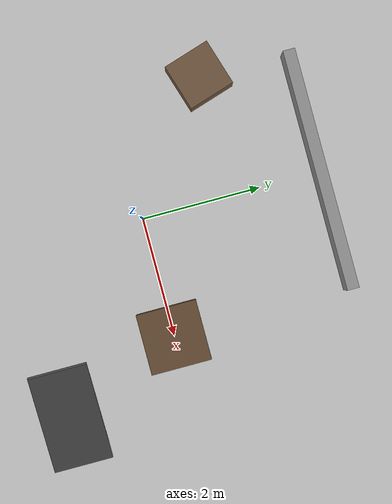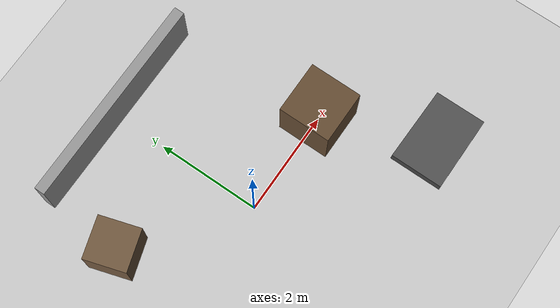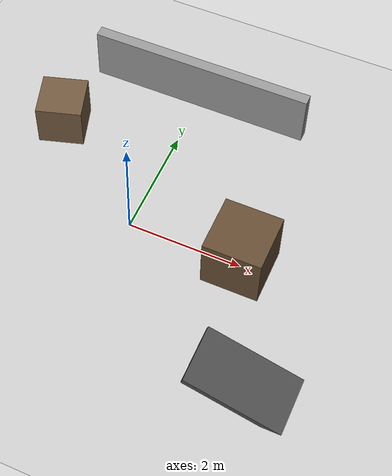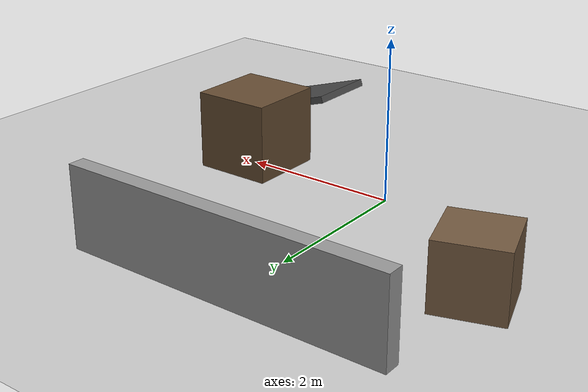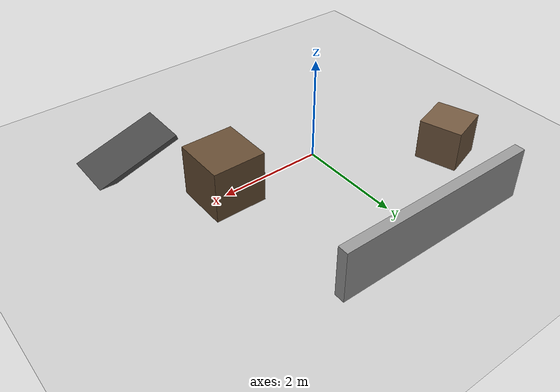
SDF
<?xml version="1.0"?>
<sdf version="1.6">
  <world name="default">
    <include>
      <uri>model://ground_plane</uri>
    </include>
    <include>
      <uri>model://sun</uri>
    </include>

    <model name="rubble_block_1">
      <static>true</static>
      <pose>2 0 0.5 0 0 0</pose>
      <link name="link">
        <collision name="collision">
          <geometry>
            <box>
              <size>1 1 1</size>
            </box>
          </geometry>
        </collision>
        <visual name="visual">
          <geometry>
            <box>
              <size>1 1 1</size>
            </box>
          </geometry>
          <material>
            <ambient>0.4 0.3 0.2 1</ambient>
            <diffuse>0.4 0.3 0.2 1</diffuse>
          </material>
        </visual>
      </link>
    </model>

    <model name="rubble_block_2">
      <static>true</static>
      <pose>-2 1.5 0.4 0 0 0.3</pose>
      <link name="link">
        <collision name="collision">
          <geometry>
            <box>
              <size>0.8 0.8 0.8</size>
            </box>
          </geometry>
        </collision>
        <visual name="visual">
          <geometry>
            <box>
              <size>0.8 0.8 0.8</size>
            </box>
          </geometry>
          <material>
            <ambient>0.45 0.35 0.25 1</ambient>
            <diffuse>0.45 0.35 0.25 1</diffuse>
          </material>
        </visual>
      </link>
    </model>

    <model name="wall_segment_1">
      <static>true</static>
      <pose>0 3 0.5 0 0 0</pose>
      <link name="link">
        <collision name="collision">
          <geometry>
            <box>
              <size>4 0.2 1</size>
            </box>
          </geometry>
        </collision>
        <visual name="visual">
          <geometry>
            <box>
              <size>4 0.2 1</size>
            </box>
          </geometry>
          <material>
            <ambient>0.6 0.6 0.6 1</ambient>
            <diffuse>0.6 0.6 0.6 1</diffuse>
          </material>
        </visual>
      </link>
    </model>

    <model name="ramp_1">
      <static>true</static>
      <pose>3 -2 0.15 0 0.3 0</pose>
      <link name="link">
        <collision name="collision">
          <geometry>
            <box>
              <size>2 1 0.1</size>
            </box>
          </geometry>
        </collision>
        <visual name="visual">
          <geometry>
            <box>
              <size>2 1 0.1</size>
            </box>
          </geometry>
          <material>
            <ambient>0.3 0.3 0.3 1</ambient>
            <diffuse>0.3 0.3 0.3 1</diffuse>
          </material>
        </visual>
      </link>
    </model>
  </world>
</sdf>
